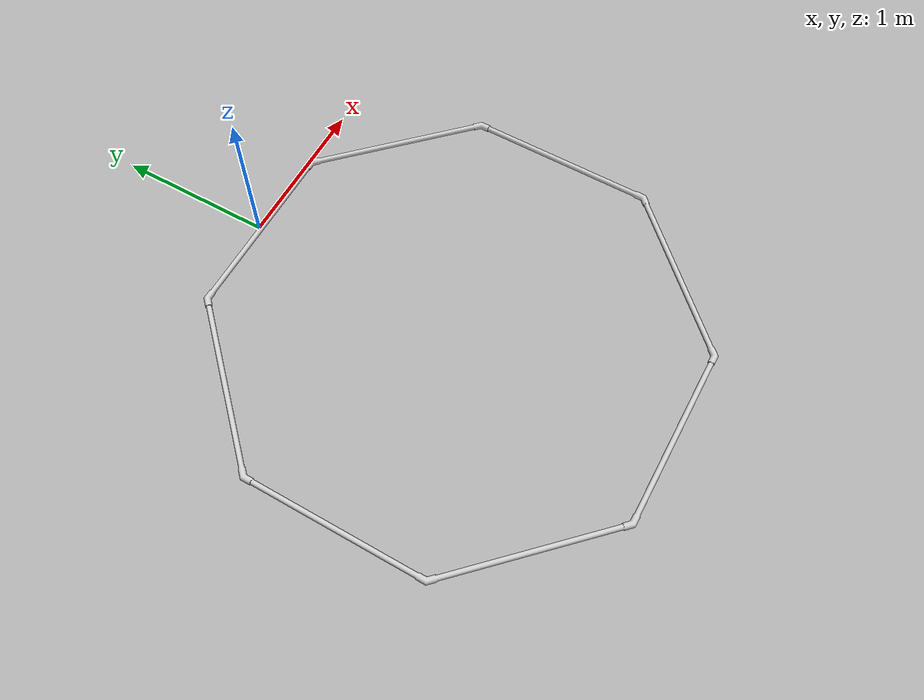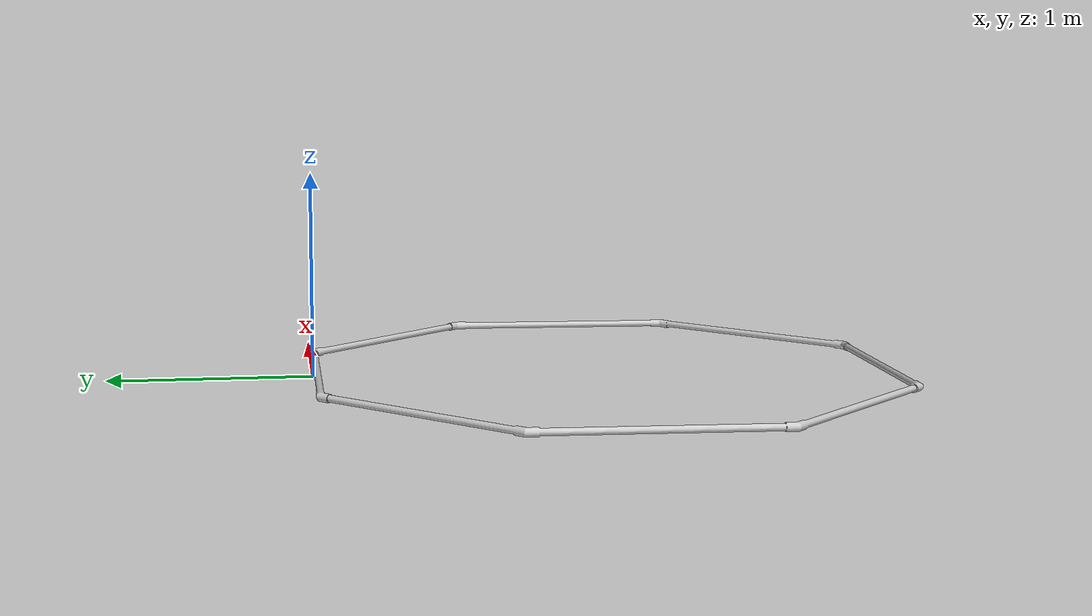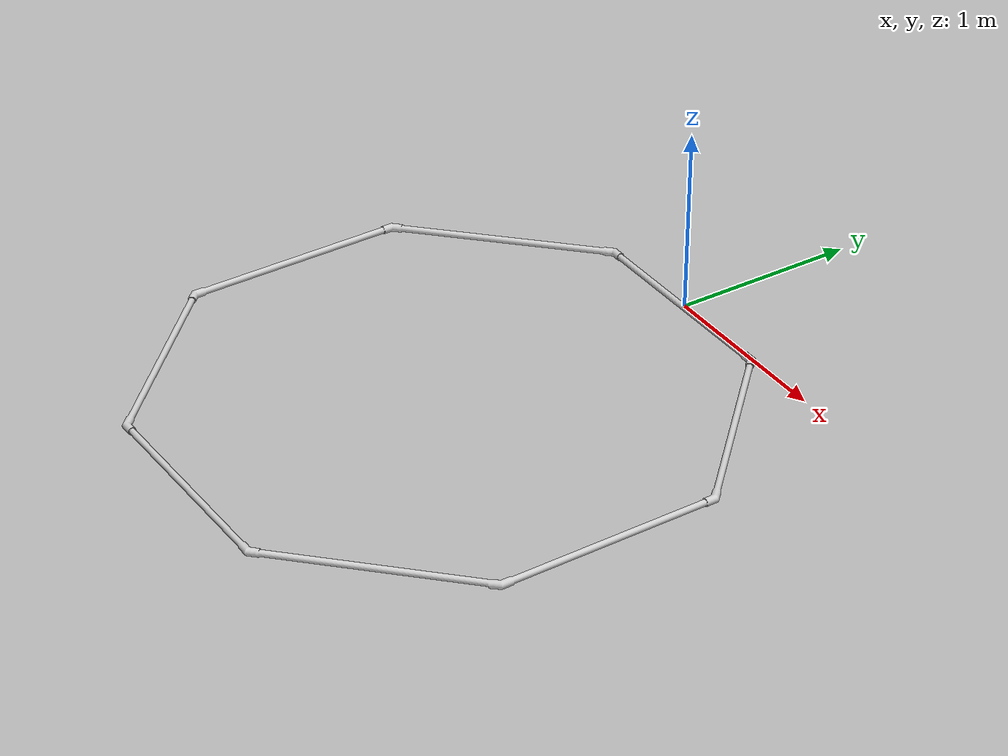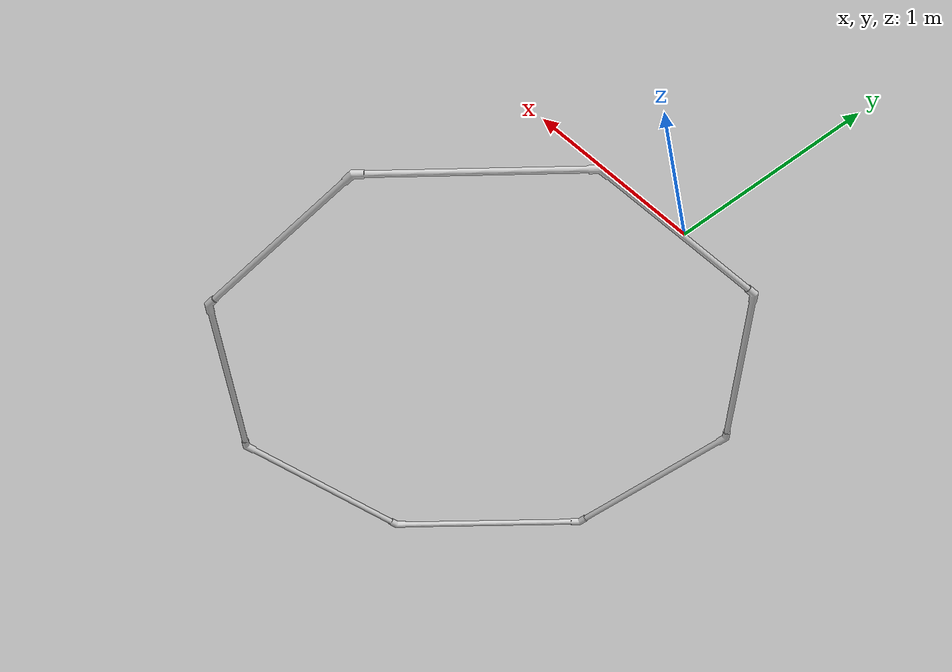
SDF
<?xml version='1.0'?>
<sdf version="1.6">
<model name="octagon">
    <static>true</static>
    <link name="link">
      <inertial>
        <origin
          xyz="0.0 0.0 0.0"
          rpy="0 0 0" />
        <mass
          value="0.2" />
        <inertia
          ixx="1.0E-5"
          ixy="0.0"
          ixz="0.0"
          iyy="1.0E-5"
          iyz="0.0"
          izz="1.0E-5" />
      </inertial>
      <visual name="visual">
        <geometry>
          <mesh>
            <uri>model://Octagon/Octagon.dae</uri>
          </mesh>
        </geometry>
      </visual>
      <collision name="collision">
        <geometry>
          <mesh>
            <uri>model://Octagon/Octagon.dae</uri>
          </mesh>
        </geometry>
      </collision>
    </link>
  </model>
</sdf>
